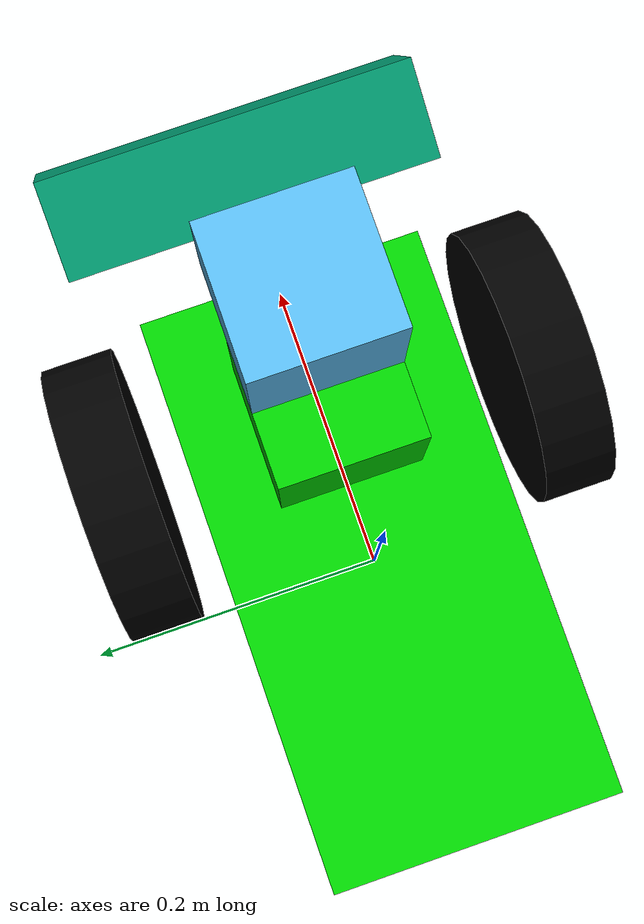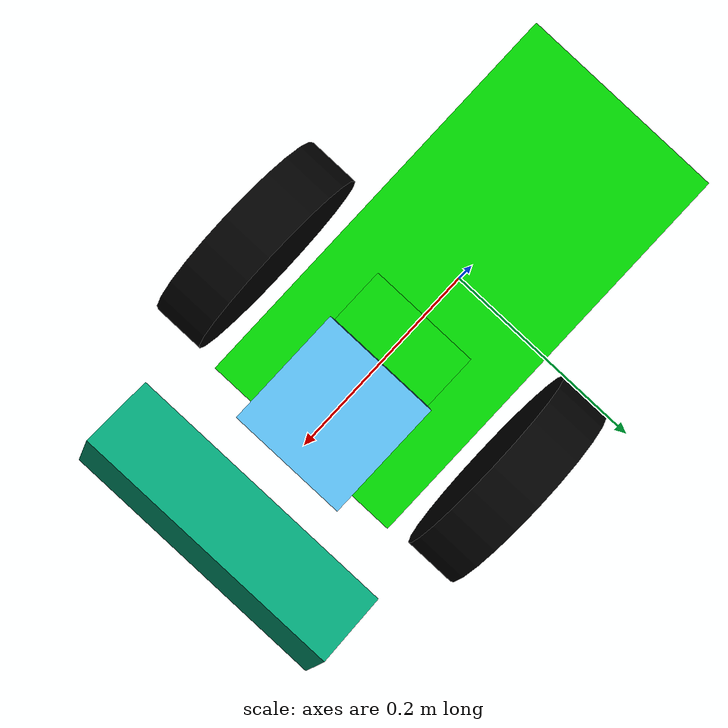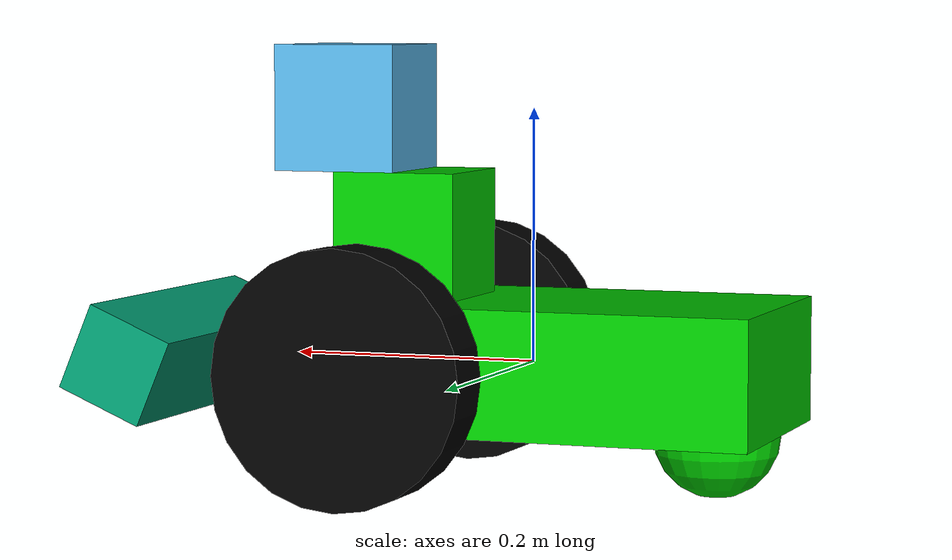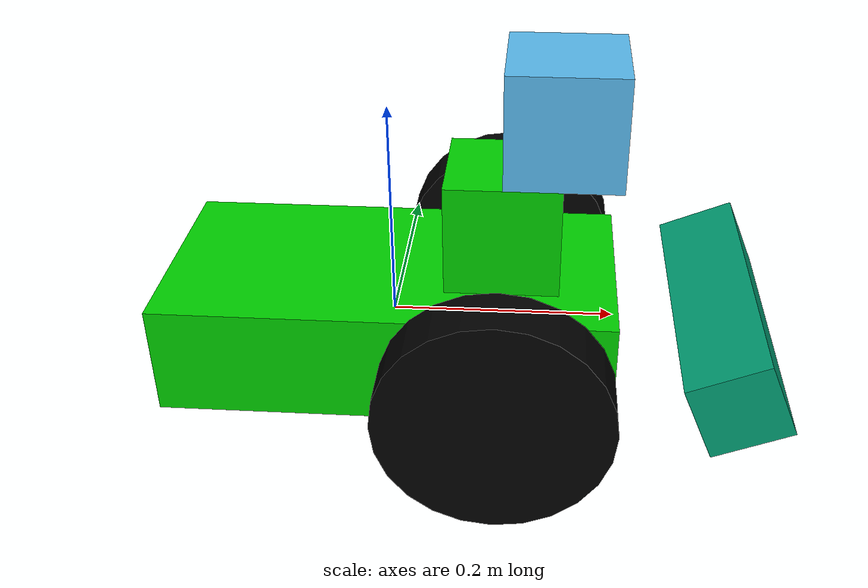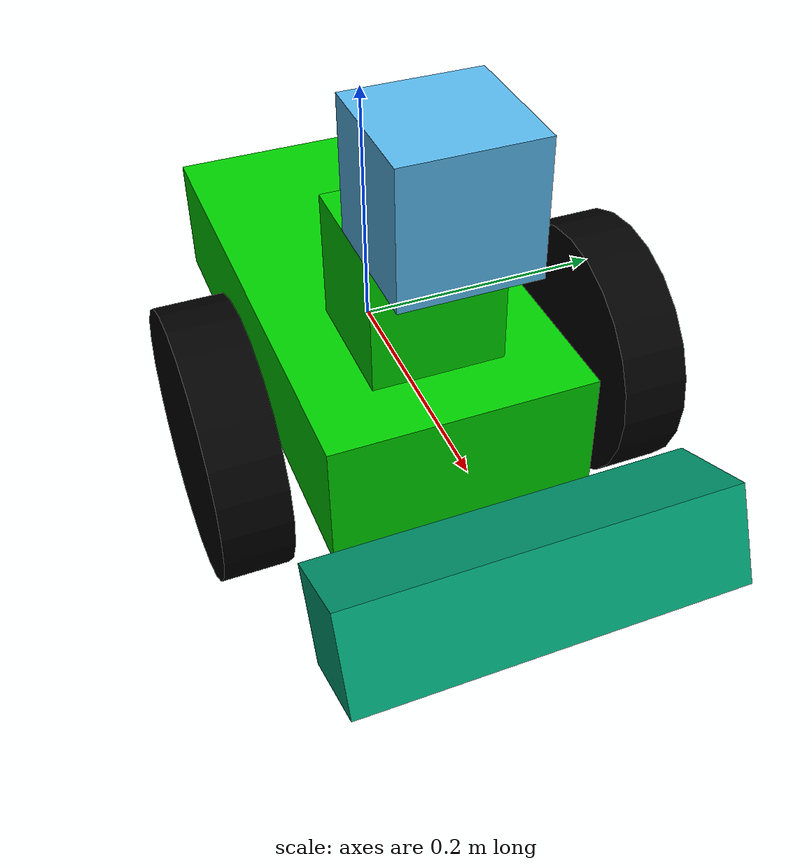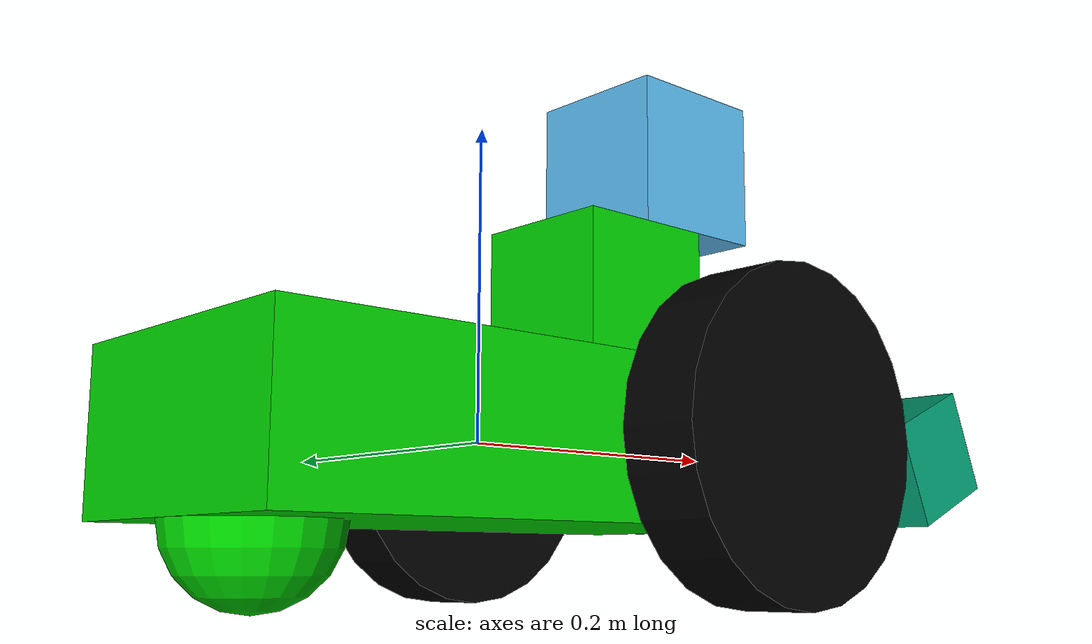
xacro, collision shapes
<?xml version='1.0'?>

<robot name="udacity_bot" xmlns:xacro="http://www.ros.org/wiki/xacro">

  <xacro:property name="M_PI" value="3.1415926535897931" />

  <material name="Blue">
    <color rgba="0.0 0.0 0.8 1.0"/>
  </material>
  <material name="Red">
    <color rgba="0.8 0.s0 0.0 1.0"/>
  </material>
  <material name="Green">
    <color rgba="0.0 0.8 0.0 1.0"/>
  </material>
  <material name="Black">
    <color rgba="0.0 0 0.0 1.0"/>
  </material>

  <xacro:include filename="$(find slam_project)/urdf/custom_bot.gazebo" />

  <link name="robot_footprint"></link>

  <joint name="robot_footprint_joint" type="fixed">
    <origin xyz="0 0 0" rpy="0 0 0" />
    <parent link="robot_footprint"/>
    <child link="chassis" />
  </joint>

  <joint type="continuous" name="left_wheel_hinge">
    <origin xyz="0.1 0.15 0" rpy="0 0 0"/>
    <child link="left_wheel"/>
    <parent link="chassis"/>
    <axis xyz="0 1 0" rpy="0 0 0"/>
    <limit effort="10000" velocity="1000"/>
    <joint_properties damping="1.0" friction="1.0"/>
  </joint>

  <joint type="continuous" name="right_wheel_hinge">
    <origin xyz="0.1 -0.15 0" rpy="0 0 0"/>
    <child link="right_wheel"/>
    <parent link="chassis"/>
    <axis xyz="0 1 0" rpy="0 0 0"/>
    <limit effort="10000" velocity="1000"/>
    <joint_properties damping="1.0" friction="1.0"/>
  </joint>

  <joint name="tower_joint" type="fixed">
    <origin xyz="0 0 0" rpy="0 0 0" />
    <parent link="chassis"/>
    <child link="tower" />
  </joint>

  <joint type="fixed" name="hokuyo_joint">
    <origin xyz="0.15 0 0.2" rpy="0 0 0"/>
    <child link="hokuyo"/>
    <parent link="tower"/>
  </joint>

  <link name="hokuyo">
    <inertial>
      <mass value="0.1"/>
      <origin xyz="0 0 0" rpy="0 0 0"/>
      <inertia
              ixx="1e-6" ixy="0" ixz="0"
              iyy="1e-6" iyz="0"
              izz="1e-6"
      />
    </inertial>

    <collision name='hokuyo_collision'>
      <origin xyz="0 0 0" rpy="0 0 0"/>
      <geometry>
        <box size="0.1 0.1 0.1"/>
      </geometry>
    </collision>

    <visual name='hokuyo_visual'>
      <origin xyz="0 0 0" rpy="0 0 0"/>
      <geometry>
        <mesh filename="package://slam_project/meshes/hokuyo.dae"/>
      </geometry>
    </visual>
  </link>

  <joint name="camera_joint" type="fixed">
    <origin xyz="0.3 0 0" rpy="0 -0.4 0" />
    <parent link="tower" />
    <child link="camera" />
  </joint>

  <link name="camera">
    <inertial>
      <mass value="0.01" />
      <origin xyz="0 0 0" />
      <inertia ixx="0.001" ixy="0.0" ixz="0.0"
        iyy="0.001" iyz="0.0"
        izz="0.001" />
    </inertial>

    <visual>
      <origin xyz=" 0 0 0 " rpy="0 0 0" />
      <geometry>
        <mesh filename="package://slam_project/meshes/kinect.dae"/>
      </geometry>
    </visual>

    <collision>
      <origin xyz="0.0 0.0 0.0" rpy="0 0 0" />
      <geometry>
        <box size="0.0730 .2760 0.0720"/>
      </geometry>
    </collision>

  </link>

  <joint name="camera_depth_joint" type="fixed">
    <origin xyz="0 0.011 0" rpy="0 0 0" />
    <parent link="camera" />
    <child link="camera_depth_frame" />
  </joint>

  <link name="camera_depth_frame">
    <inertial>
      <mass value="0.01" />
      <origin xyz="0 0 0" />
      <inertia ixx="0.001" ixy="0.0" ixz="0.0"
        iyy="0.001" iyz="0.0"
        izz="0.001" />
    </inertial>
  </link>

  <joint name="camera_depth_optical_joint" type="fixed">
    <origin xyz="0 0 0" rpy="${-M_PI/2} 0 ${-M_PI/2}" />
    <parent link="camera_depth_frame" />
    <child link="camera_depth_optical_frame" />
  </joint>

  <link name="camera_depth_optical_frame">
    <inertial>
      <mass value="0.001" />
      <origin xyz="0 0 0" />
      <inertia ixx="0.0001" ixy="0.0" ixz="0.0"
        iyy="0.0001" iyz="0.0"
        izz="0.0001" />
    </inertial>
  </link>

  <joint name="camera_rgb_joint" type="fixed">
    <origin xyz="0 -0.012 0" rpy="0 0 0" />
    <parent link="camera" />
    <child link="camera_rgb_frame" />
  </joint>

  <link name="camera_rgb_frame">
    <inertial>
      <mass value="0.001" />
      <origin xyz="0 0 0" />
      <inertia ixx="0.0001" ixy="0.0" ixz="0.0"
        iyy="0.0001" iyz="0.0"
        izz="0.0001" />
    </inertial>
  </link>

  <joint name="camera_rgb_optical_joint" type="fixed">
    <origin xyz="0 0 0" rpy="${-M_PI/2} 0 ${-M_PI/2}" />
    <parent link="camera_rgb_frame" />
    <child link="camera_rgb_optical_frame" />
  </joint>

  <link name="camera_rgb_optical_frame">
    <inertial>
      <mass value="0.001" />
      <origin xyz="0 0 0" />
      <inertia ixx="0.0001" ixy="0.0" ixz="0.0"
        iyy="0.0001" iyz="0.0"
        izz="0.0001" />
    </inertial>
  </link>

  <link name="tower">
    <inertial>
      <mass value="2.0"/>
      <origin xyz="0.1 0 0.1" rpy="0 0 0"/>
      <inertia
              ixx="0.1" ixy="0" ixz="0"
              iyy="0.1" iyz="0"
              izz="0.1"
      />
    </inertial>

    <collision name='tower_collision'>
      <origin xyz="0.1 0 0.1" rpy="0 0 0"/>
      <geometry>
        <box size=".1 .1 .1"/>
      </geometry>
    </collision>

    <visual name='tower_visual'>
      <origin xyz="0.1 0 0.1" rpy="0 0 0"/>
      <geometry>
        <box size=".2 .2 .1"/>
      </geometry>
      <material name="Green"/>
    </visual>
  </link>

  <link name="left_wheel">
    <inertial>
      <mass value="5.0"/>
      <origin xyz="0 0 0" rpy="0 1.5707 1.5707"/>
      <inertia
              ixx="0.1" ixy="0" ixz="0"
              iyy="0.1" iyz="0"
              izz="0.1"
      />
    </inertial>

    <collision name='left_wheel_collision'>
      <origin xyz="0 0 0" rpy="0 1.5707 1.5707"/>
      <geometry>
        <cylinder radius="0.1" length="0.05"/>
      </geometry>
    </collision>

    <visual name='left_wheel_visual'>
      <origin xyz="0 0 0" rpy="0 1.5707 1.5707"/>
      <geometry>
        <cylinder radius="0.1" length="0.05"/>
      </geometry>
      <material name="Black"/>
    </visual>
  </link>

  <link name="right_wheel">
    <inertial>
      <mass value="5.0"/>
      <origin xyz="0 0 0" rpy="0 1.5707 1.5707"/>
      <inertia
              ixx="0.1" ixy="0" ixz="0"
              iyy="0.1" iyz="0"
              izz="0.1"
      />
    </inertial>

    <collision name='right_wheel_collision'>
      <origin xyz="0 0 0" rpy="0 1.5707 1.5707"/>
      <geometry>
        <cylinder radius="0.1" length="0.05"/>
      </geometry>
    </collision>

    <visual name='right_wheel_visual'>
      <origin xyz="0 0 0" rpy="0 1.5707 1.5707"/>
      <geometry>
        <cylinder radius="0.1" length="0.05"/>
      </geometry>
      <material name="Black"/>
    </visual>
  </link>

  <link name='chassis'>
    <pose>0 0 0.1 0 0 0</pose>

    <inertial>
      <mass value="10.0"/>
      <origin xyz="0.0 0 0" rpy=" 0 0 0"/>
      <inertia
              ixx="0.1" ixy="0" ixz="0"
              iyy="0.1" iyz="0"
              izz="0.1"
      />
    </inertial>

    <collision name='collision'>
      <origin xyz="0 0 0" rpy=" 0 0 0"/>
      <geometry>
        <box size=".4 .2 .1"/>
      </geometry>
    </collision>

    <visual name='chassis_visual'>
      <origin xyz="0 0 0" rpy=" 0 0 0"/>
      <geometry>
        <box size=".4 .2 .1"/>
      </geometry>
      <material name="Green"/>
    </visual>

    <collision name='back_caster_collision'>
      <origin xyz="-0.15 0 -0.05" rpy=" 0 0 0"/>
      <geometry>
        <sphere radius="0.05"/>
      </geometry>
      <surface>
        <friction>
          <ode>
            <mu>0</mu>
            <mu2>0</mu2>
            <slip1>1.0</slip1>
            <slip2>1.0</slip2>
          </ode>
        </friction>
      </surface>
    </collision>

    <visual name='back_caster_visual'>
      <origin xyz="-0.15 0 -0.05" rpy=" 0 0 0"/>
      <geometry>
        <sphere radius="0.05"/>
      </geometry>
    </visual>

  </link>

</robot>
